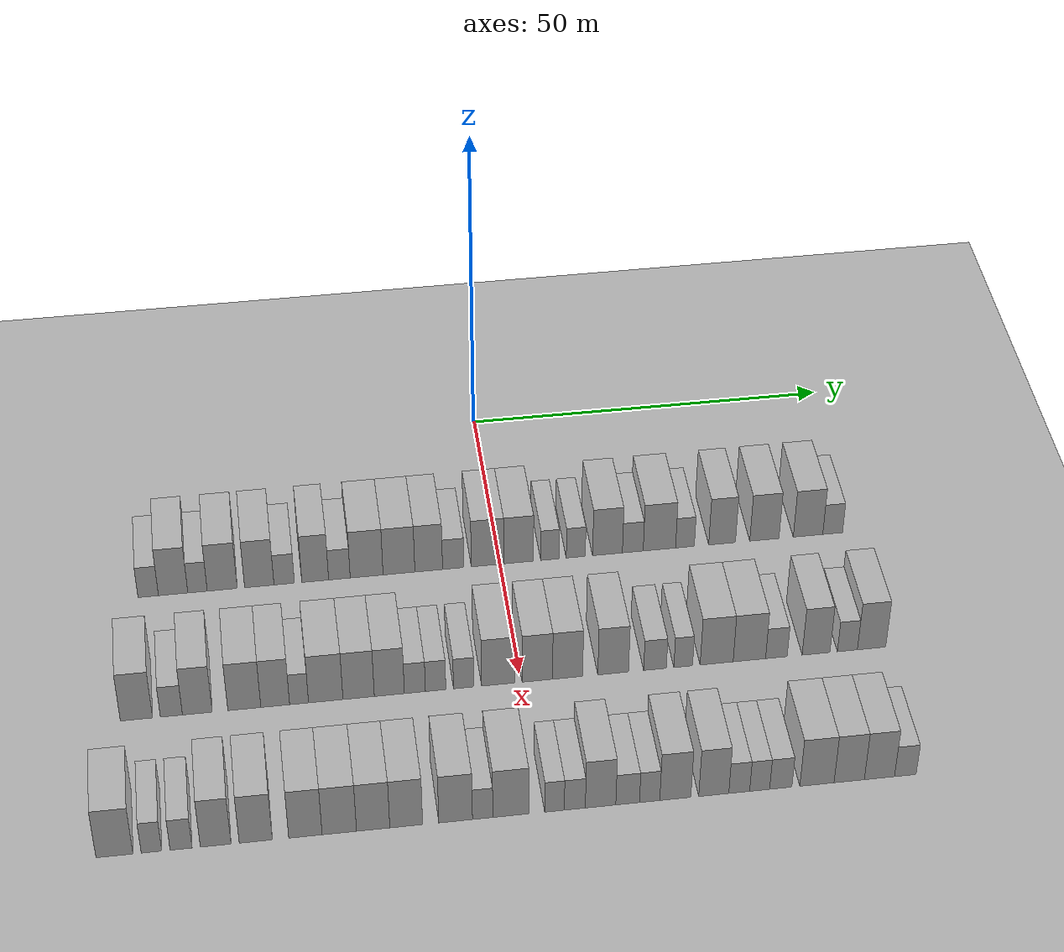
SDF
<sdf version="1.6">
 <world name="default">
  <include><name>ground_plane_1</name><uri>model://HANNAS_ground_plane</uri></include>
  <include>
   <name>ground_plane_2</name>
   <uri>model://HANNAS_ground_plane</uri>
   <pose>100 0 0  0 0 0</pose>
  </include>
  <model name="building_54">
   <static>1</static>
   <pose>25.0000 -47.5127 0 0.000000 0.000000 0.000000</pose>
   <link name="link">
    <pose>0 0 3.00 0 0 0</pose>
    <collision name="collision"><geometry><box><size>10.0000 2.7231 6.0000</size></box></geometry></collision>
    <visual name="visual">
     <cast_shadows>0</cast_shadows>
     <geometry><box><size>10.0000 2.7231 6.0000</size></box></geometry>
     <material>
      <script>
       <uri>model://HANNAS_wall/materials/scripts</uri>
       <uri>model://HANNAS_wall/materials/textures</uri>
       <name>vrc/HANNAS_wall</name>
      </script>
     </material>
    </visual>
   </link>
  </model>
  <model name="building_55">
   <static>1</static>
   <pose>25.0000 -44.1859 0 0.000000 0.000000 0.000000</pose>
   <link name="link">
    <pose>0 0 4.50 0 0 0</pose>
    <collision name="collision"><geometry><box><size>10.0000 3.9305 9.0000</size></box></geometry></collision>
    <visual name="visual">
     <cast_shadows>0</cast_shadows>
     <geometry><box><size>10.0000 3.9305 9.0000</size></box></geometry>
     <material>
      <script>
       <uri>model://HANNAS_wall/materials/scripts</uri>
       <uri>model://HANNAS_wall/materials/textures</uri>
       <name>vrc/HANNAS_wall</name>
      </script>
     </material>
    </visual>
   </link>
  </model>
  <model name="building_56">
   <static>1</static>
   <pose>25.0000 -40.9213 0 0.000000 0.000000 0.000000</pose>
   <link name="link">
    <pose>0 0 3.00 0 0 0</pose>
    <collision name="collision"><geometry><box><size>10.0000 2.5987 6.0000</size></box></geometry></collision>
    <visual name="visual">
     <cast_shadows>0</cast_shadows>
     <geometry><box><size>10.0000 2.5987 6.0000</size></box></geometry>
     <material>
      <script>
       <uri>model://HANNAS_wall/materials/scripts</uri>
       <uri>model://HANNAS_wall/materials/textures</uri>
       <name>vrc/HANNAS_wall</name>
      </script>
     </material>
    </visual>
   </link>
  </model>
  <model name="building_57">
   <static>1</static>
   <pose>25.0000 -37.6135 0 0.000000 0.000000 0.000000</pose>
   <link name="link">
    <pose>0 0 4.50 0 0 0</pose>
    <collision name="collision"><geometry><box><size>10.0000 4.0169 9.0000</size></box></geometry></collision>
    <visual name="visual">
     <cast_shadows>0</cast_shadows>
     <geometry><box><size>10.0000 4.0169 9.0000</size></box></geometry>
     <material>
      <script>
       <uri>model://HANNAS_wall/materials/scripts</uri>
       <uri>model://HANNAS_wall/materials/textures</uri>
       <name>vrc/HANNAS_wall</name>
      </script>
     </material>
    </visual>
   </link>
  </model>
  <model name="building_58">
   <static>1</static>
   <pose>25.0000 -32.6354 0 0.000000 0.000000 0.000000</pose>
   <link name="link">
    <pose>0 0 4.50 0 0 0</pose>
    <collision name="collision"><geometry><box><size>10.0000 3.9395 9.0000</size></box></geometry></collision>
    <visual name="visual">
     <cast_shadows>0</cast_shadows>
     <geometry><box><size>10.0000 3.9395 9.0000</size></box></geometry>
     <material>
      <script>
       <uri>model://HANNAS_wall/materials/scripts</uri>
       <uri>model://HANNAS_wall/materials/textures</uri>
       <name>vrc/HANNAS_wall</name>
      </script>
     </material>
    </visual>
   </link>
  </model>
  <model name="building_59">
   <static>1</static>
   <pose>25.0000 -29.2897 0 0.000000 0.000000 0.000000</pose>
   <link name="link">
    <pose>0 0 3.00 0 0 0</pose>
    <collision name="collision"><geometry><box><size>10.0000 2.7519 6.0000</size></box></geometry></collision>
    <visual name="visual">
     <cast_shadows>0</cast_shadows>
     <geometry><box><size>10.0000 2.7519 6.0000</size></box></geometry>
     <material>
      <script>
       <uri>model://HANNAS_wall/materials/scripts</uri>
       <uri>model://HANNAS_wall/materials/textures</uri>
       <name>vrc/HANNAS_wall</name>
      </script>
     </material>
    </visual>
   </link>
  </model>
  <model name="building_60">
   <static>1</static>
   <pose>25.0000 -25.1067 0 0.000000 0.000000 0.000000</pose>
   <link name="link">
    <pose>0 0 4.50 0 0 0</pose>
    <collision name="collision"><geometry><box><size>10.0000 3.6140 9.0000</size></box></geometry></collision>
    <visual name="visual">
     <cast_shadows>0</cast_shadows>
     <geometry><box><size>10.0000 3.6140 9.0000</size></box></geometry>
     <material>
      <script>
       <uri>model://HANNAS_wall/materials/scripts</uri>
       <uri>model://HANNAS_wall/materials/textures</uri>
       <name>vrc/HANNAS_wall</name>
      </script>
     </material>
    </visual>
   </link>
  </model>
  <model name="building_61">
   <static>1</static>
   <pose>25.0000 -21.8402 0 0.000000 0.000000 0.000000</pose>
   <link name="link">
    <pose>0 0 3.00 0 0 0</pose>
    <collision name="collision"><geometry><box><size>10.0000 2.9190 6.0000</size></box></geometry></collision>
    <visual name="visual">
     <cast_shadows>0</cast_shadows>
     <geometry><box><size>10.0000 2.9190 6.0000</size></box></geometry>
     <material>
      <script>
       <uri>model://HANNAS_wall/materials/scripts</uri>
       <uri>model://HANNAS_wall/materials/textures</uri>
       <name>vrc/HANNAS_wall</name>
      </script>
     </material>
    </visual>
   </link>
  </model>
  <model name="building_62">
   <static>1</static>
   <pose>25.0000 -18.1558 0 0.000000 0.000000 0.000000</pose>
   <link name="link">
    <pose>0 0 4.50 0 0 0</pose>
    <collision name="collision"><geometry><box><size>10.0000 4.4498 9.0000</size></box></geometry></collision>
    <visual name="visual">
     <cast_shadows>0</cast_shadows>
     <geometry><box><size>10.0000 4.4498 9.0000</size></box></geometry>
     <material>
      <script>
       <uri>model://HANNAS_wall/materials/scripts</uri>
       <uri>model://HANNAS_wall/materials/textures</uri>
       <name>vrc/HANNAS_wall</name>
      </script>
     </material>
    </visual>
   </link>
  </model>
  <model name="building_63">
   <static>1</static>
   <pose>25.0000 -13.7698 0 0.000000 0.000000 0.000000</pose>
   <link name="link">
    <pose>0 0 4.50 0 0 0</pose>
    <collision name="collision"><geometry><box><size>10.0000 4.3223 9.0000</size></box></geometry></collision>
    <visual name="visual">
     <cast_shadows>0</cast_shadows>
     <geometry><box><size>10.0000 4.3223 9.0000</size></box></geometry>
     <material>
      <script>
       <uri>model://HANNAS_wall/materials/scripts</uri>
       <uri>model://HANNAS_wall/materials/textures</uri>
       <name>vrc/HANNAS_wall</name>
      </script>
     </material>
    </visual>
   </link>
  </model>
  <model name="building_64">
   <static>1</static>
   <pose>25.0000 -9.7248 0 0.000000 0.000000 0.000000</pose>
   <link name="link">
    <pose>0 0 4.50 0 0 0</pose>
    <collision name="collision"><geometry><box><size>10.0000 3.7676 9.0000</size></box></geometry></collision>
    <visual name="visual">
     <cast_shadows>0</cast_shadows>
     <geometry><box><size>10.0000 3.7676 9.0000</size></box></geometry>
     <material>
      <script>
       <uri>model://HANNAS_wall/materials/scripts</uri>
       <uri>model://HANNAS_wall/materials/textures</uri>
       <name>vrc/HANNAS_wall</name>
      </script>
     </material>
    </visual>
   </link>
  </model>
  <model name="building_65">
   <static>1</static>
   <pose>25.0000 -6.3798 0 0.000000 0.000000 0.000000</pose>
   <link name="link">
    <pose>0 0 3.00 0 0 0</pose>
    <collision name="collision"><geometry><box><size>10.0000 2.9225 6.0000</size></box></geometry></collision>
    <visual name="visual">
     <cast_shadows>0</cast_shadows>
     <geometry><box><size>10.0000 2.9225 6.0000</size></box></geometry>
     <material>
      <script>
       <uri>model://HANNAS_wall/materials/scripts</uri>
       <uri>model://HANNAS_wall/materials/textures</uri>
       <name>vrc/HANNAS_wall</name>
      </script>
     </material>
    </visual>
   </link>
  </model>
  <model name="building_66">
   <static>1</static>
   <pose>25.0000 -1.6952 0 0.000000 0.000000 0.000000</pose>
   <link name="link">
    <pose>0 0 4.50 0 0 0</pose>
    <collision name="collision"><geometry><box><size>10.0000 4.4466 9.0000</size></box></geometry></collision>
    <visual name="visual">
     <cast_shadows>0</cast_shadows>
     <geometry><box><size>10.0000 4.4466 9.0000</size></box></geometry>
     <material>
      <script>
       <uri>model://HANNAS_wall/materials/scripts</uri>
       <uri>model://HANNAS_wall/materials/textures</uri>
       <name>vrc/HANNAS_wall</name>
      </script>
     </material>
    </visual>
   </link>
  </model>
  <model name="building_67">
   <static>1</static>
   <pose>25.0000 2.5589 0 0.000000 0.000000 0.000000</pose>
   <link name="link">
    <pose>0 0 4.50 0 0 0</pose>
    <collision name="collision"><geometry><box><size>10.0000 4.0617 9.0000</size></box></geometry></collision>
    <visual name="visual">
     <cast_shadows>0</cast_shadows>
     <geometry><box><size>10.0000 4.0617 9.0000</size></box></geometry>
     <material>
      <script>
       <uri>model://HANNAS_wall/materials/scripts</uri>
       <uri>model://HANNAS_wall/materials/textures</uri>
       <name>vrc/HANNAS_wall</name>
      </script>
     </material>
    </visual>
   </link>
  </model>
  <model name="building_68">
   <static>1</static>
   <pose>25.0000 6.8408 0 0.000000 0.000000 0.000000</pose>
   <link name="link">
    <pose>0 0 3.00 0 0 0</pose>
    <collision name="collision"><geometry><box><size>10.0000 2.5020 6.0000</size></box></geometry></collision>
    <visual name="visual">
     <cast_shadows>0</cast_shadows>
     <geometry><box><size>10.0000 2.5020 6.0000</size></box></geometry>
     <material>
      <script>
       <uri>model://HANNAS_wall/materials/scripts</uri>
       <uri>model://HANNAS_wall/materials/textures</uri>
       <name>vrc/HANNAS_wall</name>
      </script>
     </material>
    </visual>
   </link>
  </model>
  <model name="building_69">
   <static>1</static>
   <pose>25.0000 10.4004 0 0.000000 0.000000 0.000000</pose>
   <link name="link">
    <pose>0 0 3.00 0 0 0</pose>
    <collision name="collision"><geometry><box><size>10.0000 2.6170 6.0000</size></box></geometry></collision>
    <visual name="visual">
     <cast_shadows>0</cast_shadows>
     <geometry><box><size>10.0000 2.6170 6.0000</size></box></geometry>
     <material>
      <script>
       <uri>model://HANNAS_wall/materials/scripts</uri>
       <uri>model://HANNAS_wall/materials/textures</uri>
       <name>vrc/HANNAS_wall</name>
      </script>
     </material>
    </visual>
   </link>
  </model>
  <model name="building_70">
   <static>1</static>
   <pose>25.0000 14.7655 0 0.000000 0.000000 0.000000</pose>
   <link name="link">
    <pose>0 0 4.50 0 0 0</pose>
    <collision name="collision"><geometry><box><size>10.0000 4.1132 9.0000</size></box></geometry></collision>
    <visual name="visual">
     <cast_shadows>0</cast_shadows>
     <geometry><box><size>10.0000 4.1132 9.0000</size></box></geometry>
     <material>
      <script>
       <uri>model://HANNAS_wall/materials/scripts</uri>
       <uri>model://HANNAS_wall/materials/textures</uri>
       <name>vrc/HANNAS_wall</name>
      </script>
     </material>
    </visual>
   </link>
  </model>
  <model name="building_71">
   <static>1</static>
   <pose>25.0000 18.2616 0 0.000000 0.000000 0.000000</pose>
   <link name="link">
    <pose>0 0 3.00 0 0 0</pose>
    <collision name="collision"><geometry><box><size>10.0000 2.8789 6.0000</size></box></geometry></collision>
    <visual name="visual">
     <cast_shadows>0</cast_shadows>
     <geometry><box><size>10.0000 2.8789 6.0000</size></box></geometry>
     <material>
      <script>
       <uri>model://HANNAS_wall/materials/scripts</uri>
       <uri>model://HANNAS_wall/materials/textures</uri>
       <name>vrc/HANNAS_wall</name>
      </script>
     </material>
    </visual>
   </link>
  </model>
  <model name="building_72">
   <static>1</static>
   <pose>25.0000 21.9390 0 0.000000 0.000000 0.000000</pose>
   <link name="link">
    <pose>0 0 4.50 0 0 0</pose>
    <collision name="collision"><geometry><box><size>10.0000 4.4759 9.0000</size></box></geometry></collision>
    <visual name="visual">
     <cast_shadows>0</cast_shadows>
     <geometry><box><size>10.0000 4.4759 9.0000</size></box></geometry>
     <material>
      <script>
       <uri>model://HANNAS_wall/materials/scripts</uri>
       <uri>model://HANNAS_wall/materials/textures</uri>
       <name>vrc/HANNAS_wall</name>
      </script>
     </material>
    </visual>
   </link>
  </model>
  <model name="building_73">
   <static>1</static>
   <pose>25.0000 25.4798 0 0.000000 0.000000 0.000000</pose>
   <link name="link">
    <pose>0 0 3.00 0 0 0</pose>
    <collision name="collision"><geometry><box><size>10.0000 2.6057 6.0000</size></box></geometry></collision>
    <visual name="visual">
     <cast_shadows>0</cast_shadows>
     <geometry><box><size>10.0000 2.6057 6.0000</size></box></geometry>
     <material>
      <script>
       <uri>model://HANNAS_wall/materials/scripts</uri>
       <uri>model://HANNAS_wall/materials/textures</uri>
       <name>vrc/HANNAS_wall</name>
      </script>
     </material>
    </visual>
   </link>
  </model>
  <model name="building_74">
   <static>1</static>
   <pose>25.0000 30.6422 0 0.000000 0.000000 0.000000</pose>
   <link name="link">
    <pose>0 0 4.50 0 0 0</pose>
    <collision name="collision"><geometry><box><size>10.0000 3.7190 9.0000</size></box></geometry></collision>
    <visual name="visual">
     <cast_shadows>0</cast_shadows>
     <geometry><box><size>10.0000 3.7190 9.0000</size></box></geometry>
     <material>
      <script>
       <uri>model://HANNAS_wall/materials/scripts</uri>
       <uri>model://HANNAS_wall/materials/textures</uri>
       <name>vrc/HANNAS_wall</name>
      </script>
     </material>
    </visual>
   </link>
  </model>
  <model name="building_75">
   <static>1</static>
   <pose>25.0000 36.5384 0 0.000000 0.000000 0.000000</pose>
   <link name="link">
    <pose>0 0 4.50 0 0 0</pose>
    <collision name="collision"><geometry><box><size>10.0000 4.0735 9.0000</size></box></geometry></collision>
    <visual name="visual">
     <cast_shadows>0</cast_shadows>
     <geometry><box><size>10.0000 4.0735 9.0000</size></box></geometry>
     <material>
      <script>
       <uri>model://HANNAS_wall/materials/scripts</uri>
       <uri>model://HANNAS_wall/materials/textures</uri>
       <name>vrc/HANNAS_wall</name>
      </script>
     </material>
    </visual>
   </link>
  </model>
  <model name="building_76">
   <static>1</static>
   <pose>25.0000 42.6383 0 0.000000 0.000000 0.000000</pose>
   <link name="link">
    <pose>0 0 4.50 0 0 0</pose>
    <collision name="collision"><geometry><box><size>10.0000 4.1263 9.0000</size></box></geometry></collision>
    <visual name="visual">
     <cast_shadows>0</cast_shadows>
     <geometry><box><size>10.0000 4.1263 9.0000</size></box></geometry>
     <material>
      <script>
       <uri>model://HANNAS_wall/materials/scripts</uri>
       <uri>model://HANNAS_wall/materials/textures</uri>
       <name>vrc/HANNAS_wall</name>
      </script>
     </material>
    </visual>
   </link>
  </model>
  <model name="building_77">
   <static>1</static>
   <pose>25.0000 46.0851 0 0.000000 0.000000 0.000000</pose>
   <link name="link">
    <pose>0 0 3.00 0 0 0</pose>
    <collision name="collision"><geometry><box><size>10.0000 2.7673 6.0000</size></box></geometry></collision>
    <visual name="visual">
     <cast_shadows>0</cast_shadows>
     <geometry><box><size>10.0000 2.7673 6.0000</size></box></geometry>
     <material>
      <script>
       <uri>model://HANNAS_wall/materials/scripts</uri>
       <uri>model://HANNAS_wall/materials/textures</uri>
       <name>vrc/HANNAS_wall</name>
      </script>
     </material>
    </visual>
   </link>
  </model>
  <model name="building_171">
   <static>1</static>
   <pose>47.0000 -49.5756 0 0.000000 0.000000 0.000000</pose>
   <link name="link">
    <pose>0 0 4.50 0 0 0</pose>
    <collision name="collision"><geometry><box><size>10.0000 4.0864 9.0000</size></box></geometry></collision>
    <visual name="visual">
     <cast_shadows>0</cast_shadows>
     <geometry><box><size>10.0000 4.0864 9.0000</size></box></geometry>
     <material>
      <script>
       <uri>model://HANNAS_wall/materials/scripts</uri>
       <uri>model://HANNAS_wall/materials/textures</uri>
       <name>vrc/HANNAS_wall</name>
      </script>
     </material>
    </visual>
   </link>
  </model>
  <model name="building_172">
   <static>1</static>
   <pose>47.0000 -45.1274 0 0.000000 0.000000 0.000000</pose>
   <link name="link">
    <pose>0 0 3.00 0 0 0</pose>
    <collision name="collision"><geometry><box><size>10.0000 2.8102 6.0000</size></box></geometry></collision>
    <visual name="visual">
     <cast_shadows>0</cast_shadows>
     <geometry><box><size>10.0000 2.8102 6.0000</size></box></geometry>
     <material>
      <script>
       <uri>model://HANNAS_wall/materials/scripts</uri>
       <uri>model://HANNAS_wall/materials/textures</uri>
       <name>vrc/HANNAS_wall</name>
      </script>
     </material>
    </visual>
   </link>
  </model>
  <model name="building_173">
   <static>1</static>
   <pose>47.0000 -41.8223 0 0.000000 0.000000 0.000000</pose>
   <link name="link">
    <pose>0 0 4.50 0 0 0</pose>
    <collision name="collision"><geometry><box><size>10.0000 3.8000 9.0000</size></box></geometry></collision>
    <visual name="visual">
     <cast_shadows>0</cast_shadows>
     <geometry><box><size>10.0000 3.8000 9.0000</size></box></geometry>
     <material>
      <script>
       <uri>model://HANNAS_wall/materials/scripts</uri>
       <uri>model://HANNAS_wall/materials/textures</uri>
       <name>vrc/HANNAS_wall</name>
      </script>
     </material>
    </visual>
   </link>
  </model>
  <model name="building_174">
   <static>1</static>
   <pose>47.0000 -35.8079 0 0.000000 0.000000 0.000000</pose>
   <link name="link">
    <pose>0 0 4.50 0 0 0</pose>
    <collision name="collision"><geometry><box><size>10.0000 4.2288 9.0000</size></box></geometry></collision>
    <visual name="visual">
     <cast_shadows>0</cast_shadows>
     <geometry><box><size>10.0000 4.2288 9.0000</size></box></geometry>
     <material>
      <script>
       <uri>model://HANNAS_wall/materials/scripts</uri>
       <uri>model://HANNAS_wall/materials/textures</uri>
       <name>vrc/HANNAS_wall</name>
      </script>
     </material>
    </visual>
   </link>
  </model>
  <model name="building_175">
   <static>1</static>
   <pose>47.0000 -31.8485 0 0.000000 0.000000 0.000000</pose>
   <link name="link">
    <pose>0 0 4.50 0 0 0</pose>
    <collision name="collision"><geometry><box><size>10.0000 3.6899 9.0000</size></box></geometry></collision>
    <visual name="visual">
     <cast_shadows>0</cast_shadows>
     <geometry><box><size>10.0000 3.6899 9.0000</size></box></geometry>
     <material>
      <script>
       <uri>model://HANNAS_wall/materials/scripts</uri>
       <uri>model://HANNAS_wall/materials/textures</uri>
       <name>vrc/HANNAS_wall</name>
      </script>
     </material>
    </visual>
   </link>
  </model>
  <model name="building_176">
   <static>1</static>
   <pose>47.0000 -28.7896 0 0.000000 0.000000 0.000000</pose>
   <link name="link">
    <pose>0 0 3.00 0 0 0</pose>
    <collision name="collision"><geometry><box><size>10.0000 2.4279 6.0000</size></box></geometry></collision>
    <visual name="visual">
     <cast_shadows>0</cast_shadows>
     <geometry><box><size>10.0000 2.4279 6.0000</size></box></geometry>
     <material>
      <script>
       <uri>model://HANNAS_wall/materials/scripts</uri>
       <uri>model://HANNAS_wall/materials/textures</uri>
       <name>vrc/HANNAS_wall</name>
      </script>
     </material>
    </visual>
   </link>
  </model>
  <model name="building_177">
   <static>1</static>
   <pose>47.0000 -25.3573 0 0.000000 0.000000 0.000000</pose>
   <link name="link">
    <pose>0 0 4.50 0 0 0</pose>
    <collision name="collision"><geometry><box><size>10.0000 4.4366 9.0000</size></box></geometry></collision>
    <visual name="visual">
     <cast_shadows>0</cast_shadows>
     <geometry><box><size>10.0000 4.4366 9.0000</size></box></geometry>
     <material>
      <script>
       <uri>model://HANNAS_wall/materials/scripts</uri>
       <uri>model://HANNAS_wall/materials/textures</uri>
       <name>vrc/HANNAS_wall</name>
      </script>
     </material>
    </visual>
   </link>
  </model>
  <model name="building_178">
   <static>1</static>
   <pose>47.0000 -21.1140 0 0.000000 0.000000 0.000000</pose>
   <link name="link">
    <pose>0 0 4.50 0 0 0</pose>
    <collision name="collision"><geometry><box><size>10.0000 4.0500 9.0000</size></box></geometry></collision>
    <visual name="visual">
     <cast_shadows>0</cast_shadows>
     <geometry><box><size>10.0000 4.0500 9.0000</size></box></geometry>
     <material>
      <script>
       <uri>model://HANNAS_wall/materials/scripts</uri>
       <uri>model://HANNAS_wall/materials/textures</uri>
       <name>vrc/HANNAS_wall</name>
      </script>
     </material>
    </visual>
   </link>
  </model>
  <model name="building_179">
   <static>1</static>
   <pose>47.0000 -17.1412 0 0.000000 0.000000 0.000000</pose>
   <link name="link">
    <pose>0 0 4.50 0 0 0</pose>
    <collision name="collision"><geometry><box><size>10.0000 3.8957 9.0000</size></box></geometry></collision>
    <visual name="visual">
     <cast_shadows>0</cast_shadows>
     <geometry><box><size>10.0000 3.8957 9.0000</size></box></geometry>
     <material>
      <script>
       <uri>model://HANNAS_wall/materials/scripts</uri>
       <uri>model://HANNAS_wall/materials/textures</uri>
       <name>vrc/HANNAS_wall</name>
      </script>
     </material>
    </visual>
   </link>
  </model>
  <model name="building_180">
   <static>1</static>
   <pose>47.0000 -13.8311 0 0.000000 0.000000 0.000000</pose>
   <link name="link">
    <pose>0 0 3.00 0 0 0</pose>
    <collision name="collision"><geometry><box><size>10.0000 2.7243 6.0000</size></box></geometry></collision>
    <visual name="visual">
     <cast_shadows>0</cast_shadows>
     <geometry><box><size>10.0000 2.7243 6.0000</size></box></geometry>
     <material>
      <script>
       <uri>model://HANNAS_wall/materials/scripts</uri>
       <uri>model://HANNAS_wall/materials/textures</uri>
       <name>vrc/HANNAS_wall</name>
      </script>
     </material>
    </visual>
   </link>
  </model>
  <model name="building_181">
   <static>1</static>
   <pose>47.0000 -11.1437 0 0.000000 0.000000 0.000000</pose>
   <link name="link">
    <pose>0 0 3.00 0 0 0</pose>
    <collision name="collision"><geometry><box><size>10.0000 2.6505 6.0000</size></box></geometry></collision>
    <visual name="visual">
     <cast_shadows>0</cast_shadows>
     <geometry><box><size>10.0000 2.6505 6.0000</size></box></geometry>
     <material>
      <script>
       <uri>model://HANNAS_wall/materials/scripts</uri>
       <uri>model://HANNAS_wall/materials/textures</uri>
       <name>vrc/HANNAS_wall</name>
      </script>
     </material>
    </visual>
   </link>
  </model>
  <model name="building_182">
   <static>1</static>
   <pose>47.0000 -7.4878 0 0.000000 0.000000 0.000000</pose>
   <link name="link">
    <pose>0 0 3.00 0 0 0</pose>
    <collision name="collision"><geometry><box><size>10.0000 2.6614 6.0000</size></box></geometry></collision>
    <visual name="visual">
     <cast_shadows>0</cast_shadows>
     <geometry><box><size>10.0000 2.6614 6.0000</size></box></geometry>
     <material>
      <script>
       <uri>model://HANNAS_wall/materials/scripts</uri>
       <uri>model://HANNAS_wall/materials/textures</uri>
       <name>vrc/HANNAS_wall</name>
      </script>
     </material>
    </visual>
   </link>
  </model>
  <model name="building_183">
   <static>1</static>
   <pose>47.0000 -3.0126 0 0.000000 0.000000 0.000000</pose>
   <link name="link">
    <pose>0 0 4.50 0 0 0</pose>
    <collision name="collision"><geometry><box><size>10.0000 4.2889 9.0000</size></box></geometry></collision>
    <visual name="visual">
     <cast_shadows>0</cast_shadows>
     <geometry><box><size>10.0000 4.2889 9.0000</size></box></geometry>
     <material>
      <script>
       <uri>model://HANNAS_wall/materials/scripts</uri>
       <uri>model://HANNAS_wall/materials/textures</uri>
       <name>vrc/HANNAS_wall</name>
      </script>
     </material>
    </visual>
   </link>
  </model>
  <model name="building_184">
   <static>1</static>
   <pose>47.0000 2.1192 0 0.000000 0.000000 0.000000</pose>
   <link name="link">
    <pose>0 0 4.50 0 0 0</pose>
    <collision name="collision"><geometry><box><size>10.0000 3.9747 9.0000</size></box></geometry></collision>
    <visual name="visual">
     <cast_shadows>0</cast_shadows>
     <geometry><box><size>10.0000 3.9747 9.0000</size></box></geometry>
     <material>
      <script>
       <uri>model://HANNAS_wall/materials/scripts</uri>
       <uri>model://HANNAS_wall/materials/textures</uri>
       <name>vrc/HANNAS_wall</name>
      </script>
     </material>
    </visual>
   </link>
  </model>
  <model name="building_185">
   <static>1</static>
   <pose>47.0000 6.0768 0 0.000000 0.000000 0.000000</pose>
   <link name="link">
    <pose>0 0 4.50 0 0 0</pose>
    <collision name="collision"><geometry><box><size>10.0000 3.9405 9.0000</size></box></geometry></collision>
    <visual name="visual">
     <cast_shadows>0</cast_shadows>
     <geometry><box><size>10.0000 3.9405 9.0000</size></box></geometry>
     <material>
      <script>
       <uri>model://HANNAS_wall/materials/scripts</uri>
       <uri>model://HANNAS_wall/materials/textures</uri>
       <name>vrc/HANNAS_wall</name>
      </script>
     </material>
    </visual>
   </link>
  </model>
  <model name="building_186">
   <static>1</static>
   <pose>47.0000 12.0655 0 0.000000 0.000000 0.000000</pose>
   <link name="link">
    <pose>0 0 4.50 0 0 0</pose>
    <collision name="collision"><geometry><box><size>10.0000 4.0370 9.0000</size></box></geometry></collision>
    <visual name="visual">
     <cast_shadows>0</cast_shadows>
     <geometry><box><size>10.0000 4.0370 9.0000</size></box></geometry>
     <material>
      <script>
       <uri>model://HANNAS_wall/materials/scripts</uri>
       <uri>model://HANNAS_wall/materials/textures</uri>
       <name>vrc/HANNAS_wall</name>
      </script>
     </material>
    </visual>
   </link>
  </model>
  <model name="building_187">
   <static>1</static>
   <pose>47.0000 17.5803 0 0.000000 0.000000 0.000000</pose>
   <link name="link">
    <pose>0 0 3.00 0 0 0</pose>
    <collision name="collision"><geometry><box><size>10.0000 2.9925 6.0000</size></box></geometry></collision>
    <visual name="visual">
     <cast_shadows>0</cast_shadows>
     <geometry><box><size>10.0000 2.9925 6.0000</size></box></geometry>
     <material>
      <script>
       <uri>model://HANNAS_wall/materials/scripts</uri>
       <uri>model://HANNAS_wall/materials/textures</uri>
       <name>vrc/HANNAS_wall</name>
      </script>
     </material>
    </visual>
   </link>
  </model>
  <model name="building_188">
   <static>1</static>
   <pose>47.0000 21.3140 0 0.000000 0.000000 0.000000</pose>
   <link name="link">
    <pose>0 0 3.00 0 0 0</pose>
    <collision name="collision"><geometry><box><size>10.0000 2.4750 6.0000</size></box></geometry></collision>
    <visual name="visual">
     <cast_shadows>0</cast_shadows>
     <geometry><box><size>10.0000 2.4750 6.0000</size></box></geometry>
     <material>
      <script>
       <uri>model://HANNAS_wall/materials/scripts</uri>
       <uri>model://HANNAS_wall/materials/textures</uri>
       <name>vrc/HANNAS_wall</name>
      </script>
     </material>
    </visual>
   </link>
  </model>
  <model name="building_189">
   <static>1</static>
   <pose>47.0000 25.7413 0 0.000000 0.000000 0.000000</pose>
   <link name="link">
    <pose>0 0 4.50 0 0 0</pose>
    <collision name="collision"><geometry><box><size>10.0000 4.3797 9.0000</size></box></geometry></collision>
    <visual name="visual">
     <cast_shadows>0</cast_shadows>
     <geometry><box><size>10.0000 4.3797 9.0000</size></box></geometry>
     <material>
      <script>
       <uri>model://HANNAS_wall/materials/scripts</uri>
       <uri>model://HANNAS_wall/materials/textures</uri>
       <name>vrc/HANNAS_wall</name>
      </script>
     </material>
    </visual>
   </link>
  </model>
  <model name="building_190">
   <static>1</static>
   <pose>47.0000 30.0864 0 0.000000 0.000000 0.000000</pose>
   <link name="link">
    <pose>0 0 4.50 0 0 0</pose>
    <collision name="collision"><geometry><box><size>10.0000 4.3105 9.0000</size></box></geometry></collision>
    <visual name="visual">
     <cast_shadows>0</cast_shadows>
     <geometry><box><size>10.0000 4.3105 9.0000</size></box></geometry>
     <material>
      <script>
       <uri>model://HANNAS_wall/materials/scripts</uri>
       <uri>model://HANNAS_wall/materials/textures</uri>
       <name>vrc/HANNAS_wall</name>
      </script>
     </material>
    </visual>
   </link>
  </model>
  <model name="building_191">
   <static>1</static>
   <pose>47.0000 33.6799 0 0.000000 0.000000 0.000000</pose>
   <link name="link">
    <pose>0 0 3.00 0 0 0</pose>
    <collision name="collision"><geometry><box><size>10.0000 2.8766 6.0000</size></box></geometry></collision>
    <visual name="visual">
     <cast_shadows>0</cast_shadows>
     <geometry><box><size>10.0000 2.8766 6.0000</size></box></geometry>
     <material>
      <script>
       <uri>model://HANNAS_wall/materials/scripts</uri>
       <uri>model://HANNAS_wall/materials/textures</uri>
       <name>vrc/HANNAS_wall</name>
      </script>
     </material>
    </visual>
   </link>
  </model>
  <model name="building_192">
   <static>1</static>
   <pose>47.0000 38.9741 0 0.000000 0.000000 0.000000</pose>
   <link name="link">
    <pose>0 0 4.50 0 0 0</pose>
    <collision name="collision"><geometry><box><size>10.0000 3.7118 9.0000</size></box></geometry></collision>
    <visual name="visual">
     <cast_shadows>0</cast_shadows>
     <geometry><box><size>10.0000 3.7118 9.0000</size></box></geometry>
     <material>
      <script>
       <uri>model://HANNAS_wall/materials/scripts</uri>
       <uri>model://HANNAS_wall/materials/textures</uri>
       <name>vrc/HANNAS_wall</name>
      </script>
     </material>
    </visual>
   </link>
  </model>
  <model name="building_193">
   <static>1</static>
   <pose>47.0000 43.1689 0 0.000000 0.000000 0.000000</pose>
   <link name="link">
    <pose>0 0 3.00 0 0 0</pose>
    <collision name="collision"><geometry><box><size>10.0000 2.6777 6.0000</size></box></geometry></collision>
    <visual name="visual">
     <cast_shadows>0</cast_shadows>
     <geometry><box><size>10.0000 2.6777 6.0000</size></box></geometry>
     <material>
      <script>
       <uri>model://HANNAS_wall/materials/scripts</uri>
       <uri>model://HANNAS_wall/materials/textures</uri>
       <name>vrc/HANNAS_wall</name>
      </script>
     </material>
    </visual>
   </link>
  </model>
  <model name="building_194">
   <static>1</static>
   <pose>47.0000 46.4064 0 0.000000 0.000000 0.000000</pose>
   <link name="link">
    <pose>0 0 4.50 0 0 0</pose>
    <collision name="collision"><geometry><box><size>10.0000 3.7973 9.0000</size></box></geometry></collision>
    <visual name="visual">
     <cast_shadows>0</cast_shadows>
     <geometry><box><size>10.0000 3.7973 9.0000</size></box></geometry>
     <material>
      <script>
       <uri>model://HANNAS_wall/materials/scripts</uri>
       <uri>model://HANNAS_wall/materials/textures</uri>
       <name>vrc/HANNAS_wall</name>
      </script>
     </material>
    </visual>
   </link>
  </model>
  <model name="building_294">
   <static>1</static>
   <pose>69.0000 -52.7252 0 0.000000 0.000000 0.000000</pose>
   <link name="link">
    <pose>0 0 4.50 0 0 0</pose>
    <collision name="collision"><geometry><box><size>10.0000 4.4646 9.0000</size></box></geometry></collision>
    <visual name="visual">
     <cast_shadows>0</cast_shadows>
     <geometry><box><size>10.0000 4.4646 9.0000</size></box></geometry>
     <material>
      <script>
       <uri>model://HANNAS_wall/materials/scripts</uri>
       <uri>model://HANNAS_wall/materials/textures</uri>
       <name>vrc/HANNAS_wall</name>
      </script>
     </material>
    </visual>
   </link>
  </model>
  <model name="building_295">
   <static>1</static>
   <pose>69.0000 -48.2469 0 0.000000 0.000000 0.000000</pose>
   <link name="link">
    <pose>0 0 3.00 0 0 0</pose>
    <collision name="collision"><geometry><box><size>10.0000 2.4920 6.0000</size></box></geometry></collision>
    <visual name="visual">
     <cast_shadows>0</cast_shadows>
     <geometry><box><size>10.0000 2.4920 6.0000</size></box></geometry>
     <material>
      <script>
       <uri>model://HANNAS_wall/materials/scripts</uri>
       <uri>model://HANNAS_wall/materials/textures</uri>
       <name>vrc/HANNAS_wall</name>
      </script>
     </material>
    </visual>
   </link>
  </model>
  <model name="building_296">
   <static>1</static>
   <pose>69.0000 -44.6657 0 0.000000 0.000000 0.000000</pose>
   <link name="link">
    <pose>0 0 3.00 0 0 0</pose>
    <collision name="collision"><geometry><box><size>10.0000 2.6706 6.0000</size></box></geometry></collision>
    <visual name="visual">
     <cast_shadows>0</cast_shadows>
     <geometry><box><size>10.0000 2.6706 6.0000</size></box></geometry>
     <material>
      <script>
       <uri>model://HANNAS_wall/materials/scripts</uri>
       <uri>model://HANNAS_wall/materials/textures</uri>
       <name>vrc/HANNAS_wall</name>
      </script>
     </material>
    </visual>
   </link>
  </model>
  <model name="building_297">
   <static>1</static>
   <pose>69.0000 -40.4629 0 0.000000 0.000000 0.000000</pose>
   <link name="link">
    <pose>0 0 4.50 0 0 0</pose>
    <collision name="collision"><geometry><box><size>10.0000 3.7350 9.0000</size></box></geometry></collision>
    <visual name="visual">
     <cast_shadows>0</cast_shadows>
     <geometry><box><size>10.0000 3.7350 9.0000</size></box></geometry>
     <material>
      <script>
       <uri>model://HANNAS_wall/materials/scripts</uri>
       <uri>model://HANNAS_wall/materials/textures</uri>
       <name>vrc/HANNAS_wall</name>
      </script>
     </material>
    </visual>
   </link>
  </model>
  <model name="building_298">
   <static>1</static>
   <pose>69.0000 -35.5750 0 0.000000 0.000000 0.000000</pose>
   <link name="link">
    <pose>0 0 4.50 0 0 0</pose>
    <collision name="collision"><geometry><box><size>10.0000 4.0407 9.0000</size></box></geometry></collision>
    <visual name="visual">
     <cast_shadows>0</cast_shadows>
     <geometry><box><size>10.0000 4.0407 9.0000</size></box></geometry>
     <material>
      <script>
       <uri>model://HANNAS_wall/materials/scripts</uri>
       <uri>model://HANNAS_wall/materials/textures</uri>
       <name>vrc/HANNAS_wall</name>
      </script>
     </material>
    </visual>
   </link>
  </model>
  <model name="building_299">
   <static>1</static>
   <pose>69.0000 -29.5143 0 0.000000 0.000000 0.000000</pose>
   <link name="link">
    <pose>0 0 4.50 0 0 0</pose>
    <collision name="collision"><geometry><box><size>10.0000 4.0807 9.0000</size></box></geometry></collision>
    <visual name="visual">
     <cast_shadows>0</cast_shadows>
     <geometry><box><size>10.0000 4.0807 9.0000</size></box></geometry>
     <material>
      <script>
       <uri>model://HANNAS_wall/materials/scripts</uri>
       <uri>model://HANNAS_wall/materials/textures</uri>
       <name>vrc/HANNAS_wall</name>
      </script>
     </material>
    </visual>
   </link>
  </model>
  <model name="building_300">
   <static>1</static>
   <pose>69.0000 -25.3620 0 0.000000 0.000000 0.000000</pose>
   <link name="link">
    <pose>0 0 4.50 0 0 0</pose>
    <collision name="collision"><geometry><box><size>10.0000 4.2238 9.0000</size></box></geometry></collision>
    <visual name="visual">
     <cast_shadows>0</cast_shadows>
     <geometry><box><size>10.0000 4.2238 9.0000</size></box></geometry>
     <material>
      <script>
       <uri>model://HANNAS_wall/materials/scripts</uri>
       <uri>model://HANNAS_wall/materials/textures</uri>
       <name>vrc/HANNAS_wall</name>
      </script>
     </material>
    </visual>
   </link>
  </model>
  <model name="building_301">
   <static>1</static>
   <pose>69.0000 -21.2015 0 0.000000 0.000000 0.000000</pose>
   <link name="link">
    <pose>0 0 4.50 0 0 0</pose>
    <collision name="collision"><geometry><box><size>10.0000 4.0972 9.0000</size></box></geometry></collision>
    <visual name="visual">
     <cast_shadows>0</cast_shadows>
     <geometry><box><size>10.0000 4.0972 9.0000</size></box></geometry>
     <material>
      <script>
       <uri>model://HANNAS_wall/materials/scripts</uri>
       <uri>model://HANNAS_wall/materials/textures</uri>
       <name>vrc/HANNAS_wall</name>
      </script>
     </material>
    </visual>
   </link>
  </model>
  <model name="building_302">
   <static>1</static>
   <pose>69.0000 -17.1287 0 0.000000 0.000000 0.000000</pose>
   <link name="link">
    <pose>0 0 4.50 0 0 0</pose>
    <collision name="collision"><geometry><box><size>10.0000 4.0484 9.0000</size></box></geometry></collision>
    <visual name="visual">
     <cast_shadows>0</cast_shadows>
     <geometry><box><size>10.0000 4.0484 9.0000</size></box></geometry>
     <material>
      <script>
       <uri>model://HANNAS_wall/materials/scripts</uri>
       <uri>model://HANNAS_wall/materials/textures</uri>
       <name>vrc/HANNAS_wall</name>
      </script>
     </material>
    </visual>
   </link>
  </model>
  <model name="building_303">
   <static>1</static>
   <pose>69.0000 -11.0220 0 0.000000 0.000000 0.000000</pose>
   <link name="link">
    <pose>0 0 4.50 0 0 0</pose>
    <collision name="collision"><geometry><box><size>10.0000 4.1649 9.0000</size></box></geometry></collision>
    <visual name="visual">
     <cast_shadows>0</cast_shadows>
     <geometry><box><size>10.0000 4.1649 9.0000</size></box></geometry>
     <material>
      <script>
       <uri>model://HANNAS_wall/materials/scripts</uri>
       <uri>model://HANNAS_wall/materials/textures</uri>
       <name>vrc/HANNAS_wall</name>
      </script>
     </material>
    </visual>
   </link>
  </model>
  <model name="building_304">
   <static>1</static>
   <pose>69.0000 -7.6783 0 0.000000 0.000000 0.000000</pose>
   <link name="link">
    <pose>0 0 3.00 0 0 0</pose>
    <collision name="collision"><geometry><box><size>10.0000 2.5226 6.0000</size></box></geometry></collision>
    <visual name="visual">
     <cast_shadows>0</cast_shadows>
     <geometry><box><size>10.0000 2.5226 6.0000</size></box></geometry>
     <material>
      <script>
       <uri>model://HANNAS_wall/materials/scripts</uri>
       <uri>model://HANNAS_wall/materials/textures</uri>
       <name>vrc/HANNAS_wall</name>
      </script>
     </material>
    </visual>
   </link>
  </model>
  <model name="building_305">
   <static>1</static>
   <pose>69.0000 -4.1925 0 0.000000 0.000000 0.000000</pose>
   <link name="link">
    <pose>0 0 4.50 0 0 0</pose>
    <collision name="collision"><geometry><box><size>10.0000 4.4489 9.0000</size></box></geometry></collision>
    <visual name="visual">
     <cast_shadows>0</cast_shadows>
     <geometry><box><size>10.0000 4.4489 9.0000</size></box></geometry>
     <material>
      <script>
       <uri>model://HANNAS_wall/materials/scripts</uri>
       <uri>model://HANNAS_wall/materials/textures</uri>
       <name>vrc/HANNAS_wall</name>
      </script>
     </material>
    </visual>
   </link>
  </model>
  <model name="building_306">
   <static>1</static>
   <pose>69.0000 1.2573 0 0.000000 0.000000 0.000000</pose>
   <link name="link">
    <pose>0 0 3.00 0 0 0</pose>
    <collision name="collision"><geometry><box><size>10.0000 2.4509 6.0000</size></box></geometry></collision>
    <visual name="visual">
     <cast_shadows>0</cast_shadows>
     <geometry><box><size>10.0000 2.4509 6.0000</size></box></geometry>
     <material>
      <script>
       <uri>model://HANNAS_wall/materials/scripts</uri>
       <uri>model://HANNAS_wall/materials/textures</uri>
       <name>vrc/HANNAS_wall</name>
      </script>
     </material>
    </visual>
   </link>
  </model>
  <model name="building_307">
   <static>1</static>
   <pose>69.0000 3.7936 0 0.000000 0.000000 0.000000</pose>
   <link name="link">
    <pose>0 0 3.00 0 0 0</pose>
    <collision name="collision"><geometry><box><size>10.0000 2.6216 6.0000</size></box></geometry></collision>
    <visual name="visual">
     <cast_shadows>0</cast_shadows>
     <geometry><box><size>10.0000 2.6216 6.0000</size></box></geometry>
     <material>
      <script>
       <uri>model://HANNAS_wall/materials/scripts</uri>
       <uri>model://HANNAS_wall/materials/textures</uri>
       <name>vrc/HANNAS_wall</name>
      </script>
     </material>
    </visual>
   </link>
  </model>
  <model name="building_308">
   <static>1</static>
   <pose>69.0000 7.0097 0 0.000000 0.000000 0.000000</pose>
   <link name="link">
    <pose>0 0 4.50 0 0 0</pose>
    <collision name="collision"><geometry><box><size>10.0000 3.8105 9.0000</size></box></geometry></collision>
    <visual name="visual">
     <cast_shadows>0</cast_shadows>
     <geometry><box><size>10.0000 3.8105 9.0000</size></box></geometry>
     <material>
      <script>
       <uri>model://HANNAS_wall/materials/scripts</uri>
       <uri>model://HANNAS_wall/materials/textures</uri>
       <name>vrc/HANNAS_wall</name>
      </script>
     </material>
    </visual>
   </link>
  </model>
  <model name="building_309">
   <static>1</static>
   <pose>69.0000 10.3995 0 0.000000 0.000000 0.000000</pose>
   <link name="link">
    <pose>0 0 3.00 0 0 0</pose>
    <collision name="collision"><geometry><box><size>10.0000 2.9693 6.0000</size></box></geometry></collision>
    <visual name="visual">
     <cast_shadows>0</cast_shadows>
     <geometry><box><size>10.0000 2.9693 6.0000</size></box></geometry>
     <material>
      <script>
       <uri>model://HANNAS_wall/materials/scripts</uri>
       <uri>model://HANNAS_wall/materials/textures</uri>
       <name>vrc/HANNAS_wall</name>
      </script>
     </material>
    </visual>
   </link>
  </model>
  <model name="building_310">
   <static>1</static>
   <pose>69.0000 13.1571 0 0.000000 0.000000 0.000000</pose>
   <link name="link">
    <pose>0 0 3.00 0 0 0</pose>
    <collision name="collision"><geometry><box><size>10.0000 2.5458 6.0000</size></box></geometry></collision>
    <visual name="visual">
     <cast_shadows>0</cast_shadows>
     <geometry><box><size>10.0000 2.5458 6.0000</size></box></geometry>
     <material>
      <script>
       <uri>model://HANNAS_wall/materials/scripts</uri>
       <uri>model://HANNAS_wall/materials/textures</uri>
       <name>vrc/HANNAS_wall</name>
      </script>
     </material>
    </visual>
   </link>
  </model>
  <model name="building_311">
   <static>1</static>
   <pose>69.0000 16.3828 0 0.000000 0.000000 0.000000</pose>
   <link name="link">
    <pose>0 0 4.50 0 0 0</pose>
    <collision name="collision"><geometry><box><size>10.0000 3.9057 9.0000</size></box></geometry></collision>
    <visual name="visual">
     <cast_shadows>0</cast_shadows>
     <geometry><box><size>10.0000 3.9057 9.0000</size></box></geometry>
     <material>
      <script>
       <uri>model://HANNAS_wall/materials/scripts</uri>
       <uri>model://HANNAS_wall/materials/textures</uri>
       <name>vrc/HANNAS_wall</name>
      </script>
     </material>
    </visual>
   </link>
  </model>
  <model name="building_312">
   <static>1</static>
   <pose>69.0000 21.2338 0 0.000000 0.000000 0.000000</pose>
   <link name="link">
    <pose>0 0 4.50 0 0 0</pose>
    <collision name="collision"><geometry><box><size>10.0000 3.7962 9.0000</size></box></geometry></collision>
    <visual name="visual">
     <cast_shadows>0</cast_shadows>
     <geometry><box><size>10.0000 3.7962 9.0000</size></box></geometry>
     <material>
      <script>
       <uri>model://HANNAS_wall/materials/scripts</uri>
       <uri>model://HANNAS_wall/materials/textures</uri>
       <name>vrc/HANNAS_wall</name>
      </script>
     </material>
    </visual>
   </link>
  </model>
  <model name="building_313">
   <static>1</static>
   <pose>69.0000 24.4502 0 0.000000 0.000000 0.000000</pose>
   <link name="link">
    <pose>0 0 3.00 0 0 0</pose>
    <collision name="collision"><geometry><box><size>10.0000 2.6366 6.0000</size></box></geometry></collision>
    <visual name="visual">
     <cast_shadows>0</cast_shadows>
     <geometry><box><size>10.0000 2.6366 6.0000</size></box></geometry>
     <material>
      <script>
       <uri>model://HANNAS_wall/materials/scripts</uri>
       <uri>model://HANNAS_wall/materials/textures</uri>
       <name>vrc/HANNAS_wall</name>
      </script>
     </material>
    </visual>
   </link>
  </model>
  <model name="building_314">
   <static>1</static>
   <pose>69.0000 27.0348 0 0.000000 0.000000 0.000000</pose>
   <link name="link">
    <pose>0 0 3.00 0 0 0</pose>
    <collision name="collision"><geometry><box><size>10.0000 2.5327 6.0000</size></box></geometry></collision>
    <visual name="visual">
     <cast_shadows>0</cast_shadows>
     <geometry><box><size>10.0000 2.5327 6.0000</size></box></geometry>
     <material>
      <script>
       <uri>model://HANNAS_wall/materials/scripts</uri>
       <uri>model://HANNAS_wall/materials/textures</uri>
       <name>vrc/HANNAS_wall</name>
      </script>
     </material>
    </visual>
   </link>
  </model>
  <model name="building_315">
   <static>1</static>
   <pose>69.0000 29.7128 0 0.000000 0.000000 0.000000</pose>
   <link name="link">
    <pose>0 0 3.00 0 0 0</pose>
    <collision name="collision"><geometry><box><size>10.0000 2.8233 6.0000</size></box></geometry></collision>
    <visual name="visual">
     <cast_shadows>0</cast_shadows>
     <geometry><box><size>10.0000 2.8233 6.0000</size></box></geometry>
     <material>
      <script>
       <uri>model://HANNAS_wall/materials/scripts</uri>
       <uri>model://HANNAS_wall/materials/textures</uri>
       <name>vrc/HANNAS_wall</name>
      </script>
     </material>
    </visual>
   </link>
  </model>
  <model name="building_316">
   <static>1</static>
   <pose>69.0000 34.3023 0 0.000000 0.000000 0.000000</pose>
   <link name="link">
    <pose>0 0 4.50 0 0 0</pose>
    <collision name="collision"><geometry><box><size>10.0000 4.3559 9.0000</size></box></geometry></collision>
    <visual name="visual">
     <cast_shadows>0</cast_shadows>
     <geometry><box><size>10.0000 4.3559 9.0000</size></box></geometry>
     <material>
      <script>
       <uri>model://HANNAS_wall/materials/scripts</uri>
       <uri>model://HANNAS_wall/materials/textures</uri>
       <name>vrc/HANNAS_wall</name>
      </script>
     </material>
    </visual>
   </link>
  </model>
  <model name="building_317">
   <static>1</static>
   <pose>69.0000 38.4091 0 0.000000 0.000000 0.000000</pose>
   <link name="link">
    <pose>0 0 4.50 0 0 0</pose>
    <collision name="collision"><geometry><box><size>10.0000 3.8576 9.0000</size></box></geometry></collision>
    <visual name="visual">
     <cast_shadows>0</cast_shadows>
     <geometry><box><size>10.0000 3.8576 9.0000</size></box></geometry>
     <material>
      <script>
       <uri>model://HANNAS_wall/materials/scripts</uri>
       <uri>model://HANNAS_wall/materials/textures</uri>
       <name>vrc/HANNAS_wall</name>
      </script>
     </material>
    </visual>
   </link>
  </model>
  <model name="building_318">
   <static>1</static>
   <pose>69.0000 42.2616 0 0.000000 0.000000 0.000000</pose>
   <link name="link">
    <pose>0 0 4.50 0 0 0</pose>
    <collision name="collision"><geometry><box><size>10.0000 3.8475 9.0000</size></box></geometry></collision>
    <visual name="visual">
     <cast_shadows>0</cast_shadows>
     <geometry><box><size>10.0000 3.8475 9.0000</size></box></geometry>
     <material>
      <script>
       <uri>model://HANNAS_wall/materials/scripts</uri>
       <uri>model://HANNAS_wall/materials/textures</uri>
       <name>vrc/HANNAS_wall</name>
      </script>
     </material>
    </visual>
   </link>
  </model>
  <model name="building_319">
   <static>1</static>
   <pose>69.0000 45.5721 0 0.000000 0.000000 0.000000</pose>
   <link name="link">
    <pose>0 0 3.00 0 0 0</pose>
    <collision name="collision"><geometry><box><size>10.0000 2.7734 6.0000</size></box></geometry></collision>
    <visual name="visual">
     <cast_shadows>0</cast_shadows>
     <geometry><box><size>10.0000 2.7734 6.0000</size></box></geometry>
     <material>
      <script>
       <uri>model://HANNAS_wall/materials/scripts</uri>
       <uri>model://HANNAS_wall/materials/textures</uri>
       <name>vrc/HANNAS_wall</name>
      </script>
     </material>
    </visual>
   </link>
  </model>
 </world>
</sdf>
